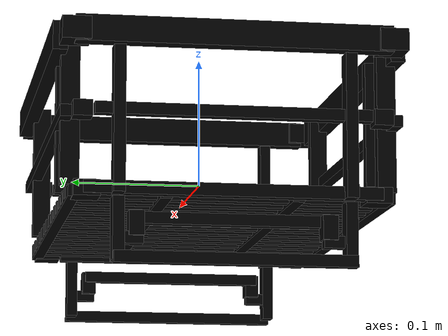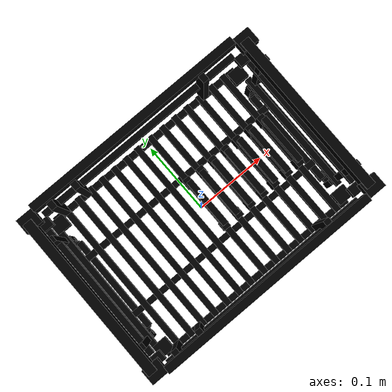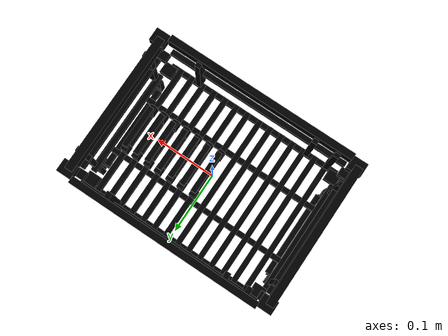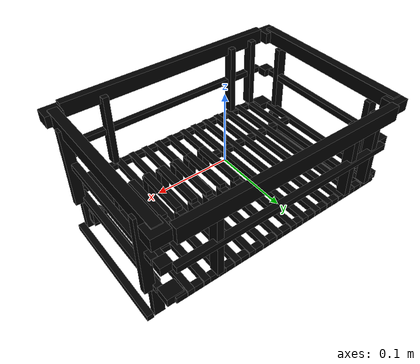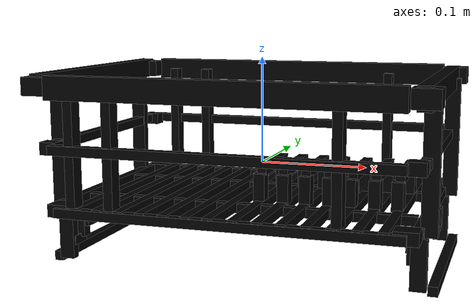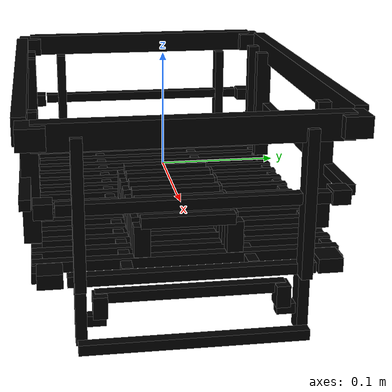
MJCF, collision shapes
<mujoco model="model">
  <option timestep="0.002" gravity="0.0 0.0 -9.81" />
  <compiler angle="radian" />
  <asset>
    <mesh file="visual/DishRack027.obj" name="DishRack027_vis" />
    <texture file="visual/T_BC001.png" name="DishRack027_material" type="2d" />
    <material name="DishRack027_material" rgba="1 1 1 1.0" texture="DishRack027_material" shininess="0.5" specular="0.33333333333333337" />
  </asset>
  <default>
    <default class="visual">
      <geom conaffinity="0" contype="0" group="2" type="mesh" density="0" />
    </default>
    <default class="collision">
      <geom group="3" rgba="1 1 1 0.25" density="0" solref="0.004 1" solimp="0.998 0.998 0.001" friction="0.5" />
    </default>
    <default class="spawn">
      <geom group="0" rgba="1 1 1 0.5" contype="0" conaffinity="0" />
      <site group="0" rgba="1 1 1 0.5" />
    </default>
    <default class="region">
      <geom group="1" conaffinity="0" contype="0" rgba="0 1 0 0" mass="0" />
    </default>
  </default>
  <worldbody>
    <body>
      <body name="object">
        <geom mesh="DishRack027_vis" type="mesh" class="visual" material="DishRack027_material" group="2" contype="0" conaffinity="0" density="0" mass="0.5" />
        <geom type="box" pos="-0.13647109 -0.00018721 -0.03259326" size="0.004297460429370403 0.11860546469688416 0.004297460429370403" quat="1.0 0.0 0.0 0.0" class="collision" group="3" rgba="0 0 0 0" density="0" friction="0.5" solref="0.004 1" solimp="0.998 0.998 0.001" />
        <geom type="box" pos="-0.11492716 -0.00018721 -0.03259326" size="0.004297460895031691 0.11860546469688416 0.004297460895031691" quat="1.0 0.0 0.0 0.0" class="collision" group="3" rgba="0 0 0 0" density="0" friction="0.5" solref="0.004 1" solimp="0.998 0.998 0.001" />
        <geom type="box" pos="-0.09449758 -0.00018721 -0.03259326" size="0.004297461360692978 0.11860546469688416 0.004297461360692978" quat="1.0 0.0 0.0 0.0" class="collision" group="3" rgba="0 0 0 0" density="0" friction="0.5" solref="0.004 1" solimp="0.998 0.998 0.001" />
        <geom type="box" pos="-0.07369655 -0.00018721 -0.03259326" size="0.0042974622920155525 0.11860546469688416 0.0042974622920155525" quat="1.0 0.0 0.0 0.0" class="collision" group="3" rgba="0 0 0 0" density="0" friction="0.5" solref="0.004 1" solimp="0.998 0.998 0.001" />
        <geom type="box" pos="-0.05252408 -0.00018721 -0.03259326" size="0.00429746275767684 0.11860546469688416 0.00429746275767684" quat="1.0 0.0 0.0 0.0" class="collision" group="3" rgba="0 0 0 0" density="0" friction="0.5" solref="0.004 1" solimp="0.998 0.998 0.001" />
        <geom type="box" pos="-0.03172305 -0.00018721 -0.03259326" size="0.004297463223338127 0.11860546469688416 0.004297463223338127" quat="1.0 0.0 0.0 0.0" class="collision" group="3" rgba="0 0 0 0" density="0" friction="0.5" solref="0.004 1" solimp="0.998 0.998 0.001" />
        <geom type="box" pos="-0.01203636 0.00018423 -0.03259326" size="0.0042974636889994144 0.11860546469688416 0.0042974636889994144" quat="1.0 0.0 0.0 0.0" class="collision" group="3" rgba="0 0 0 0" density="0" friction="0.5" solref="0.004 1" solimp="0.998 0.998 0.001" />
        <geom type="box" pos="0.01062190 0.00018423 -0.03259326" size="0.004297464154660702 0.11860546469688416 0.004297464154660702" quat="1.0 0.0 0.0 0.0" class="collision" group="3" rgba="0 0 0 0" density="0" friction="0.5" solref="0.004 1" solimp="0.998 0.998 0.001" />
        <geom type="box" pos="0.03151579 0.00018423 -0.03259326" size="0.004297464620321989 0.11860546469688416 0.004297464620321989" quat="1.0 0.0 0.0 0.0" class="collision" group="3" rgba="0 0 0 0" density="0" friction="0.5" solref="0.004 1" solimp="0.998 0.998 0.001" />
        <geom type="box" pos="0.05240968 0.00018423 -0.03259326" size="0.004297465085983276 0.11860546469688416 0.004297465085983276" quat="1.0 0.0 0.0 0.0" class="collision" group="3" rgba="0 0 0 0" density="0" friction="0.5" solref="0.004 1" solimp="0.998 0.998 0.001" />
        <geom type="box" pos="0.07356152 0.00018423 -0.03259326" size="0.004297465551644564 0.11860546469688416 0.004297465551644564" quat="1.0 0.0 0.0 0.0" class="collision" group="3" rgba="0 0 0 0" density="0" friction="0.5" solref="0.004 1" solimp="0.998 0.998 0.001" />
        <geom type="box" pos="0.09497131 0.00018423 -0.03259326" size="0.004297466017305851 0.11860546469688416 0.004297466017305851" quat="1.0 0.0 0.0 0.0" class="collision" group="3" rgba="0 0 0 0" density="0" friction="0.5" solref="0.004 1" solimp="0.998 0.998 0.001" />
        <geom type="box" pos="0.11586519 0.00018423 -0.03259326" size="0.004297466482967138 0.11860546469688416 0.004297466482967138" quat="1.0 0.0 0.0 0.0" class="collision" group="3" rgba="0 0 0 0" density="0" friction="0.5" solref="0.004 1" solimp="0.998 0.998 0.001" />
        <geom type="box" pos="0.13701703 0.00018423 -0.03259326" size="0.004297467414289713 0.11860546469688416 0.004297467414289713" quat="1.0 0.0 0.0 0.0" class="collision" group="3" rgba="0 0 0 0" density="0" friction="0.5" solref="0.004 1" solimp="0.998 0.998 0.001" />
        <geom type="box" pos="-0.13647109 0.11525853 0.02560011" size="0.004297467879951 0.006999134086072445 0.05283378064632416" quat="1.0 0.0 0.0 0.0" class="collision" group="3" rgba="0 0 0 0" density="0" friction="0.5" solref="0.004 1" solimp="0.998 0.998 0.001" />
        <geom type="box" pos="-0.13647109 -0.11697016 0.02560011" size="0.0042974683456122875 0.006999135483056307 0.052833788096904755" quat="1.0 0.0 0.0 0.0" class="collision" group="3" rgba="0 0 0 0" density="0" friction="0.5" solref="0.004 1" solimp="0.998 0.998 0.001" />
        <geom type="box" pos="-0.09997629 0.11525853 0.02560011" size="0.004297468811273575 0.006999137345701456 0.05283379554748535" quat="1.0 0.0 0.0 0.0" class="collision" group="3" rgba="0 0 0 0" density="0" friction="0.5" solref="0.004 1" solimp="0.998 0.998 0.001" />
        <geom type="box" pos="-0.09997629 -0.11697016 0.02560011" size="0.004297469276934862 0.006999138742685318 0.05283380299806595" quat="1.0 0.0 0.0 0.0" class="collision" group="3" rgba="0 0 0 0" density="0" friction="0.5" solref="0.004 1" solimp="0.998 0.998 0.001" />
        <geom type="box" pos="0.10020811 0.11525853 0.02560011" size="0.0042974697425961494 0.006999140605330467 0.052833810448646545" quat="1.0 0.0 0.0 0.0" class="collision" group="3" rgba="0 0 0 0" density="0" friction="0.5" solref="0.004 1" solimp="0.998 0.998 0.001" />
        <geom type="box" pos="0.10020811 -0.11697016 0.02560011" size="0.004297470208257437 0.006999142002314329 0.052833814173936844" quat="1.0 0.0 0.0 0.0" class="collision" group="3" rgba="0 0 0 0" density="0" friction="0.5" solref="0.004 1" solimp="0.998 0.998 0.001" />
        <geom type="box" pos="0.16908980 -0.08392222 0.01976358" size="0.006999242585152388 0.004297507461160421 0.05789348855614662" quat="1.0 0.0 0.0 0.0" class="collision" group="3" rgba="0 0 0 0" density="0" friction="0.5" solref="0.004 1" solimp="0.998 0.998 0.001" />
        <geom type="box" pos="0.16908980 0.08322292 0.01976358" size="0.006999242585152388 0.004297507461160421 0.05789348855614662" quat="1.0 0.0 0.0 0.0" class="collision" group="3" rgba="0 0 0 0" density="0" friction="0.5" solref="0.004 1" solimp="0.998 0.998 0.001" />
        <geom type="box" pos="0.16121835 -0.08392222 -0.06201892" size="0.006999241188168526 0.0042975060641765594 0.022483717650175095" quat="1.0 0.0 0.0 0.0" class="collision" group="3" rgba="0 0 0 0" density="0" friction="0.5" solref="0.004 1" solimp="0.998 0.998 0.001" />
        <geom type="box" pos="0.16121835 0.10885910 0.02267730" size="0.007775586564093828 0.007006735075265169 0.0057895248755812645" quat="1.0 0.0 0.0 0.0" class="collision" group="3" rgba="0 0 0 0" density="0" friction="0.5" solref="0.004 1" solimp="0.998 0.998 0.001" />
        <geom type="box" pos="0.16102862 0.00018423 -0.03409361" size="0.004297505132853985 0.09315252304077148 0.004297505132853985" quat="1.0 0.0 0.0 0.0" class="collision" group="3" rgba="0 0 0 0" density="0" friction="0.5" solref="0.004 1" solimp="0.998 0.998 0.001" />
        <geom type="box" pos="0.15263248 0.00018423 -0.05248981" size="0.004297505132853985 0.07290098071098328 0.004297505132853985" quat="1.0 0.0 0.0 0.0" class="collision" group="3" rgba="0 0 0 0" density="0" friction="0.5" solref="0.004 1" solimp="0.998 0.998 0.001" />
        <geom type="box" pos="0.15855212 -0.07486041 -0.06799141" size="0.004297505132853985 0.010003487579524517 0.004297505132853985" quat="1.0 0.0 0.0 0.0" class="collision" group="3" rgba="0 0 0 0" density="0" friction="0.5" solref="0.004 1" solimp="0.998 0.998 0.001" />
        <geom type="box" pos="0.15855212 0.07492914 -0.06799141" size="0.004297505132853985 0.010003487579524517 0.004297505132853985" quat="1.0 0.0 0.0 0.0" class="collision" group="3" rgba="0 0 0 0" density="0" friction="0.5" solref="0.004 1" solimp="0.998 0.998 0.001" />
        <geom type="box" pos="0.15654688 -0.06925032 -0.05760985" size="0.006999240722507238 0.005541231017559767 0.008876316249370575" quat="1.0 0.0 0.0 0.0" class="collision" group="3" rgba="0 0 0 0" density="0" friction="0.5" solref="0.004 1" solimp="0.998 0.998 0.001" />
        <geom type="box" pos="0.15654688 0.06988023 -0.05760985" size="0.006999240722507238 0.005541231017559767 0.008876318112015724" quat="1.0 0.0 0.0 0.0" class="collision" group="3" rgba="0 0 0 0" density="0" friction="0.5" solref="0.004 1" solimp="0.998 0.998 0.001" />
        <geom type="box" pos="0.17356183 0.00018423 -0.08336514" size="0.004297505132853985 0.08713141828775406 0.004297505132853985" quat="1.0 0.0 0.0 0.0" class="collision" group="3" rgba="0 0 0 0" density="0" friction="0.5" solref="0.004 1" solimp="0.998 0.998 0.001" />
        <geom type="box" pos="-0.17176548 0.00018423 -0.08336514" size="0.004297505132853985 0.08713141828775406 0.004297505132853985" quat="1.0 0.0 0.0 0.0" class="collision" group="3" rgba="0 0 0 0" density="0" friction="0.5" solref="0.004 1" solimp="0.998 0.998 0.001" />
        <geom type="box" pos="-0.16087028 -0.00018721 -0.03259326" size="0.004297476727515459 0.10803420096635818 0.0046705142594873905" quat="1.0 0.0 0.0 0.0" class="collision" group="3" rgba="0 0 0 0" density="0" friction="0.5" solref="0.004 1" solimp="0.998 0.998 0.001" />
        <geom type="box" pos="-0.16701605 -0.08392222 0.01555744" size="0.006999186705797911 0.004297464620321989 0.052833907306194305" quat="1.0 0.0 0.0 0.0" class="collision" group="3" rgba="0 0 0 0" density="0" friction="0.5" solref="0.004 1" solimp="0.998 0.998 0.001" />
        <geom type="box" pos="-0.16701605 0.08322291 0.01555744" size="0.006999188102781773 0.004297465551644564 0.0528339147567749" quat="1.0 0.0 0.0 0.0" class="collision" group="3" rgba="0 0 0 0" density="0" friction="0.5" solref="0.004 1" solimp="0.998 0.998 0.001" />
        <geom type="box" pos="-0.16245516 -0.08392222 -0.06201892" size="0.006999241188168526 0.0042975060641765594 0.022483717650175095" quat="1.0 0.0 0.0 0.0" class="collision" group="3" rgba="0 0 0 0" density="0" friction="0.5" solref="0.004 1" solimp="0.998 0.998 0.001" />
        <geom type="box" pos="-0.16245516 0.08322292 -0.06201892" size="0.006999241188168526 0.0042975060641765594 0.022483717650175095" quat="1.0 0.0 0.0 0.0" class="collision" group="3" rgba="0 0 0 0" density="0" friction="0.5" solref="0.004 1" solimp="0.998 0.998 0.001" />
        <geom type="box" pos="-0.15229606 0.00018423 -0.05248981" size="0.004297505132853985 0.07290098071098328 0.004297505132853985" quat="1.0 0.0 0.0 0.0" class="collision" group="3" rgba="0 0 0 0" density="0" friction="0.5" solref="0.004 1" solimp="0.998 0.998 0.001" />
        <geom type="box" pos="-0.15828294 -0.06925032 -0.05760985" size="0.006999240722507238 0.005541231017559767 0.008876333013176918" quat="1.0 0.0 0.0 0.0" class="collision" group="3" rgba="0 0 0 0" density="0" friction="0.5" solref="0.004 1" solimp="0.998 0.998 0.001" />
        <geom type="box" pos="-0.15828294 0.06988023 -0.05760985" size="0.006999240722507238 0.005541231017559767 0.008876333944499493" quat="1.0 0.0 0.0 0.0" class="collision" group="3" rgba="0 0 0 0" density="0" friction="0.5" solref="0.004 1" solimp="0.998 0.998 0.001" />
        <geom type="box" pos="-0.15933206 -0.07486041 -0.06799141" size="0.004297505132853985 0.010003487579524517 0.004297505132853985" quat="1.0 0.0 0.0 0.0" class="collision" group="3" rgba="0 0 0 0" density="0" friction="0.5" solref="0.004 1" solimp="0.998 0.998 0.001" />
        <geom type="box" pos="-0.15933206 0.07492914 -0.06799141" size="0.004297505132853985 0.010003487579524517 0.004297505132853985" quat="1.0 0.0 0.0 0.0" class="collision" group="3" rgba="0 0 0 0" density="0" friction="0.5" solref="0.004 1" solimp="0.998 0.998 0.001" />
        <geom type="box" pos="0.01062190 0.00018423 -0.00100008" size="0.004297505132853985 0.03635859489440918 0.004297505132853985" quat="1.0 0.0 0.0 0.0" class="collision" group="3" rgba="0 0 0 0" density="0" friction="0.5" solref="0.004 1" solimp="0.998 0.998 0.001" />
        <geom type="box" pos="0.03128077 0.00018423 -0.00100008" size="0.004297505132853985 0.03635859489440918 0.004297505132853985" quat="1.0 0.0 0.0 0.0" class="collision" group="3" rgba="0 0 0 0" density="0" friction="0.5" solref="0.004 1" solimp="0.998 0.998 0.001" />
        <geom type="box" pos="0.05232580 0.00018423 -0.00100008" size="0.004297505132853985 0.03635859489440918 0.004297505132853985" quat="1.0 0.0 0.0 0.0" class="collision" group="3" rgba="0 0 0 0" density="0" friction="0.5" solref="0.004 1" solimp="0.998 0.998 0.001" />
        <geom type="box" pos="0.07340943 0.00018423 -0.00100008" size="0.004297505132853985 0.03635859489440918 0.004297505132853985" quat="1.0 0.0 0.0 0.0" class="collision" group="3" rgba="0 0 0 0" density="0" friction="0.5" solref="0.004 1" solimp="0.998 0.998 0.001" />
        <geom type="box" pos="0.09518813 0.00018423 -0.00100008" size="0.004297505132853985 0.03635859489440918 0.004297505132853985" quat="1.0 0.0 0.0 0.0" class="collision" group="3" rgba="0 0 0 0" density="0" friction="0.5" solref="0.004 1" solimp="0.998 0.998 0.001" />
        <geom type="box" pos="0.11604008 0.00018423 -0.00100008" size="0.004297505132853985 0.03635859489440918 0.004297505132853985" quat="1.0 0.0 0.0 0.0" class="collision" group="3" rgba="0 0 0 0" density="0" friction="0.5" solref="0.004 1" solimp="0.998 0.998 0.001" />
        <geom type="box" pos="0.13689203 0.00018423 -0.00100008" size="0.004297505132853985 0.03635859489440918 0.004297505132853985" quat="1.0 0.0 0.0 0.0" class="collision" group="3" rgba="0 0 0 0" density="0" friction="0.5" solref="0.004 1" solimp="0.998 0.998 0.001" />
        <geom type="box" pos="0.13562415 -0.03520585 -0.01665019" size="0.005236241966485977 0.006374392658472061 0.013202188536524773" quat="1.0 0.0 0.0 0.0" class="collision" group="3" rgba="0 0 0 0" density="0" friction="0.5" solref="0.004 1" solimp="0.998 0.998 0.001" />
        <geom type="box" pos="0.13562415 0.03630890 -0.01665019" size="0.005236241966485977 0.006374392658472061 0.013202188536524773" quat="1.0 0.0 0.0 0.0" class="collision" group="3" rgba="0 0 0 0" density="0" friction="0.5" solref="0.004 1" solimp="0.998 0.998 0.001" />
        <geom type="box" pos="0.11547129 -0.03520585 -0.01665019" size="0.005236241966485977 0.006374392658472061 0.013202188536524773" quat="1.0 0.0 0.0 0.0" class="collision" group="3" rgba="0 0 0 0" density="0" friction="0.5" solref="0.004 1" solimp="0.998 0.998 0.001" />
        <geom type="box" pos="0.11547129 0.03630890 -0.01665019" size="0.005236241966485977 0.006374392658472061 0.013202188536524773" quat="1.0 0.0 0.0 0.0" class="collision" group="3" rgba="0 0 0 0" density="0" friction="0.5" solref="0.004 1" solimp="0.998 0.998 0.001" />
        <geom type="box" pos="0.09348025 -0.03520585 -0.01665019" size="0.005236241966485977 0.006374392658472061 0.013202188536524773" quat="1.0 0.0 0.0 0.0" class="collision" group="3" rgba="0 0 0 0" density="0" friction="0.5" solref="0.004 1" solimp="0.998 0.998 0.001" />
        <geom type="box" pos="0.09348025 0.03630890 -0.01665019" size="0.005236241966485977 0.006374392658472061 0.013202188536524773" quat="1.0 0.0 0.0 0.0" class="collision" group="3" rgba="0 0 0 0" density="0" friction="0.5" solref="0.004 1" solimp="0.998 0.998 0.001" />
        <geom type="box" pos="0.07404937 -0.03520585 -0.01665019" size="0.005236241966485977 0.006374392658472061 0.013202188536524773" quat="1.0 0.0 0.0 0.0" class="collision" group="3" rgba="0 0 0 0" density="0" friction="0.5" solref="0.004 1" solimp="0.998 0.998 0.001" />
        <geom type="box" pos="0.07404937 0.03630890 -0.01665019" size="0.005236241966485977 0.006374392658472061 0.013202188536524773" quat="1.0 0.0 0.0 0.0" class="collision" group="3" rgba="0 0 0 0" density="0" friction="0.5" solref="0.004 1" solimp="0.998 0.998 0.001" />
        <geom type="box" pos="0.05243766 -0.03520585 -0.01665019" size="0.005236241966485977 0.006374392658472061 0.013202188536524773" quat="1.0 0.0 0.0 0.0" class="collision" group="3" rgba="0 0 0 0" density="0" friction="0.5" solref="0.004 1" solimp="0.998 0.998 0.001" />
        <geom type="box" pos="0.05243766 0.03630890 -0.01665019" size="0.005236241966485977 0.006374392658472061 0.013202188536524773" quat="1.0 0.0 0.0 0.0" class="collision" group="3" rgba="0 0 0 0" density="0" friction="0.5" solref="0.004 1" solimp="0.998 0.998 0.001" />
        <geom type="box" pos="0.03198462 -0.03520585 -0.01665019" size="0.005236241966485977 0.006374392658472061 0.013202188536524773" quat="1.0 0.0 0.0 0.0" class="collision" group="3" rgba="0 0 0 0" density="0" friction="0.5" solref="0.004 1" solimp="0.998 0.998 0.001" />
        <geom type="box" pos="0.03198462 0.03630890 -0.01665019" size="0.005236241966485977 0.006374392658472061 0.013202188536524773" quat="1.0 0.0 0.0 0.0" class="collision" group="3" rgba="0 0 0 0" density="0" friction="0.5" solref="0.004 1" solimp="0.998 0.998 0.001" />
        <geom type="box" pos="0.00956013 -0.03520585 -0.01665019" size="0.005236241966485977 0.006374392658472061 0.013202188536524773" quat="1.0 0.0 0.0 0.0" class="collision" group="3" rgba="0 0 0 0" density="0" friction="0.5" solref="0.004 1" solimp="0.998 0.998 0.001" />
        <geom type="box" pos="0.00956013 0.03630890 -0.01665019" size="0.005236241966485977 0.006374392658472061 0.013202188536524773" quat="1.0 0.0 0.0 0.0" class="collision" group="3" rgba="0 0 0 0" density="0" friction="0.5" solref="0.004 1" solimp="0.998 0.998 0.001" />
        <geom type="box" pos="-0.00089482 -0.12097676 0.02311520" size="0.1559232622385025 0.0042975302785634995 0.004297505132853985" quat="1.0 0.0 0.0 0.0" class="collision" group="3" rgba="0 0 0 0" density="0" friction="0.5" solref="0.004 1" solimp="0.998 0.998 0.001" />
        <geom type="box" pos="-0.00089482 0.11956432 0.02311520" size="0.1559232622385025 0.0042975302785634995 0.004297505132853985" quat="1.0 0.0 0.0 0.0" class="collision" group="3" rgba="0 0 0 0" density="0" friction="0.5" solref="0.004 1" solimp="0.998 0.998 0.001" />
        <geom type="box" pos="0.16567347 0.00018423 0.02343466" size="0.004297505132853985 0.10025028139352798 0.004297505132853985" quat="1.0 0.0 0.0 0.0" class="collision" group="3" rgba="0 0 0 0" density="0" friction="0.5" solref="0.004 1" solimp="0.998 0.998 0.001" />
        <geom type="box" pos="-0.16499072 0.00018423 0.02343466" size="0.004297505132853985 0.10025028884410858 0.004297505132853985" quat="1.0 0.0 0.0 0.0" class="collision" group="3" rgba="0 0 0 0" density="0" friction="0.5" solref="0.004 1" solimp="0.998 0.998 0.001" />
        <geom type="box" pos="-0.00089482 -0.12246338 0.07777526" size="0.15592285990715027 0.0054315002635121346 0.010554633103311062" quat="1.0 0.0 0.0 0.0" class="collision" group="3" rgba="0 0 0 0" density="0" friction="0.5" solref="0.004 1" solimp="0.998 0.998 0.001" />
        <geom type="box" pos="-0.00089482 0.12426479 0.07777526" size="0.15592287480831146 0.005431501194834709 0.010554633103311062" quat="1.0 0.0 0.0 0.0" class="collision" group="3" rgba="0 0 0 0" density="0" friction="0.5" solref="0.004 1" solimp="0.998 0.998 0.001" />
        <geom type="box" pos="0.16567347 0.00018423 0.07737810" size="0.006349395494908094 0.11505339294672012 0.010305817238986492" quat="1.0 0.0 0.0 0.0" class="collision" group="3" rgba="0 0 0 0" density="0" friction="0.5" solref="0.004 1" solimp="0.998 0.998 0.001" />
        <geom type="box" pos="-0.17080044 0.00018423 0.07900859" size="0.006349395494908094 0.11505339294672012 0.009569981135427952" quat="1.0 0.0 0.0 0.0" class="collision" group="3" rgba="0 0 0 0" density="0" friction="0.5" solref="0.004 1" solimp="0.998 0.998 0.001" />
        <geom type="box" pos="0.16121835 -0.10835044 0.02267730" size="0.007775586564093828 0.0070066689513623714 0.005789480172097683" quat="1.0 0.0 0.0 0.0" class="collision" group="3" rgba="0 0 0 0" density="0" friction="0.5" solref="0.004 1" solimp="0.998 0.998 0.001" />
        <geom type="box" pos="0.15399236 -0.10537479 -0.03336249" size="0.010709896683692932 0.009650809690356255 0.005789465270936489" quat="1.0 0.0 0.0 0.0" class="collision" group="3" rgba="0 0 0 0" density="0" friction="0.5" solref="0.004 1" solimp="0.998 0.998 0.001" />
        <geom type="box" pos="0.15399236 0.10514618 -0.03336249" size="0.010709899477660656 0.009650809690356255 0.005789465270936489" quat="1.0 0.0 0.0 0.0" class="collision" group="3" rgba="0 0 0 0" density="0" friction="0.5" solref="0.004 1" solimp="0.998 0.998 0.001" />
        <geom type="box" pos="-0.15419751 -0.10537479 -0.03336249" size="0.010709901340305805 0.009650809690356255 0.005789465270936489" quat="1.0 0.0 0.0 0.0" class="collision" group="3" rgba="0 0 0 0" density="0" friction="0.5" solref="0.004 1" solimp="0.998 0.998 0.001" />
        <geom type="box" pos="-0.15419751 0.10514618 -0.03336249" size="0.010709903202950954 0.009650809690356255 0.005789465270936489" quat="1.0 0.0 0.0 0.0" class="collision" group="3" rgba="0 0 0 0" density="0" friction="0.5" solref="0.004 1" solimp="0.998 0.998 0.001" />
        <geom type="box" pos="-0.16233025 0.10885910 0.02267730" size="0.007775586564093828 0.007006661966443062 0.00578947551548481" quat="1.0 0.0 0.0 0.0" class="collision" group="3" rgba="0 0 0 0" density="0" friction="0.5" solref="0.004 1" solimp="0.998 0.998 0.001" />
        <geom type="box" pos="-0.16233025 -0.10835044 0.02267730" size="0.007775586564093828 0.0070066605694592 0.005789474584162235" quat="1.0 0.0 0.0 0.0" class="collision" group="3" rgba="0 0 0 0" density="0" friction="0.5" solref="0.004 1" solimp="0.998 0.998 0.001" />
        <geom type="box" pos="0.16776644 -0.11478370 0.07829469" size="0.011667258106172085 0.010513465851545334 0.008160551078617573" quat="1.0 0.0 0.0 0.0" class="collision" group="3" rgba="0 0 0 0" density="0" friction="0.5" solref="0.004 1" solimp="0.998 0.998 0.001" />
        <geom type="box" pos="0.16776644 0.11455510 0.07829469" size="0.011667258106172085 0.010513465851545334 0.008160551078617573" quat="1.0 0.0 0.0 0.0" class="collision" group="3" rgba="0 0 0 0" density="0" friction="0.5" solref="0.004 1" solimp="0.998 0.998 0.001" />
        <geom type="box" pos="-0.16797159 -0.11478370 0.07829469" size="0.011667258106172085 0.010513465851545334 0.008160551078617573" quat="1.0 0.0 0.0 0.0" class="collision" group="3" rgba="0 0 0 0" density="0" friction="0.5" solref="0.004 1" solimp="0.998 0.998 0.001" />
        <geom type="box" pos="-0.16797159 0.11455510 0.07829469" size="0.011667258106172085 0.010513465851545334 0.008160551078617573" quat="1.0 0.0 0.0 0.0" class="collision" group="3" rgba="0 0 0 0" density="0" friction="0.5" solref="0.004 1" solimp="0.998 0.998 0.001" />
        <geom type="box" pos="-0.00089482 -0.11461915 -0.03423978" size="0.1559232622385025 0.0042975302785634995 0.004297505132853985" quat="1.0 0.0 0.0 0.0" class="collision" group="3" rgba="0 0 0 0" density="0" friction="0.5" solref="0.004 1" solimp="0.998 0.998 0.001" />
        <geom type="box" pos="-0.00089482 -0.04809539 -0.03423978" size="0.1559232622385025 0.0042975302785634995 0.004297505132853985" quat="1.0 0.0 0.0 0.0" class="collision" group="3" rgba="0 0 0 0" density="0" friction="0.5" solref="0.004 1" solimp="0.998 0.998 0.001" />
        <geom type="box" pos="-0.00089482 0.04772057 -0.03423978" size="0.1559232622385025 0.0042975302785634995 0.004297505132853985" quat="1.0 0.0 0.0 0.0" class="collision" group="3" rgba="0 0 0 0" density="0" friction="0.5" solref="0.004 1" solimp="0.998 0.998 0.001" />
        <geom type="box" pos="-0.00089482 0.11348970 -0.03423978" size="0.1559232622385025 0.0042975302785634995 0.004297505132853985" quat="1.0 0.0 0.0 0.0" class="collision" group="3" rgba="0 0 0 0" density="0" friction="0.5" solref="0.004 1" solimp="0.998 0.998 0.001" />
        <geom type="box" pos="0.16121835 0.08369114 -0.06201892" size="0.006999241188168526 0.0042975060641765594 0.022483717650175095" quat="1.0 0.0 0.0 0.0" class="collision" group="3" rgba="0 0 0 0" density="0" friction="0.5" solref="0.004 1" solimp="0.998 0.998 0.001" />
        <geom class="region" name="reg_int_0" type="box" pos="-0.0704333350000000069 0.0 0.06430701999999999" size="0.073040495 0.1052209869999999995 0.09260609" />
        <geom size="0.17767009 0.12859931 0.087989" pos="0.0 0.0 -0.0" name="reg_bbox" class="region" type="box" quat="1.0 0.0 0.0 0.0" />
      </body>
    </body>
  </worldbody>
  <actuator />
</mujoco>
